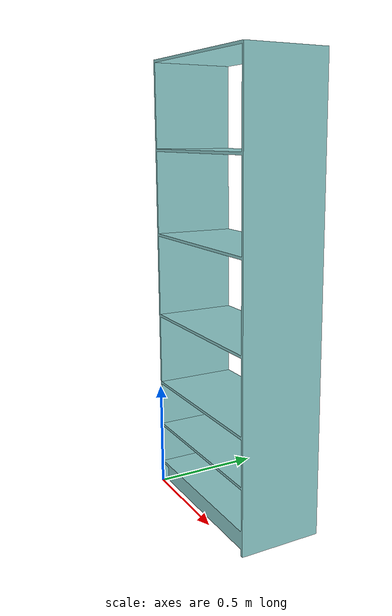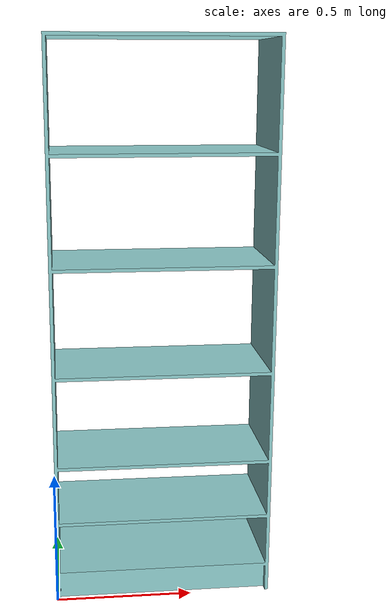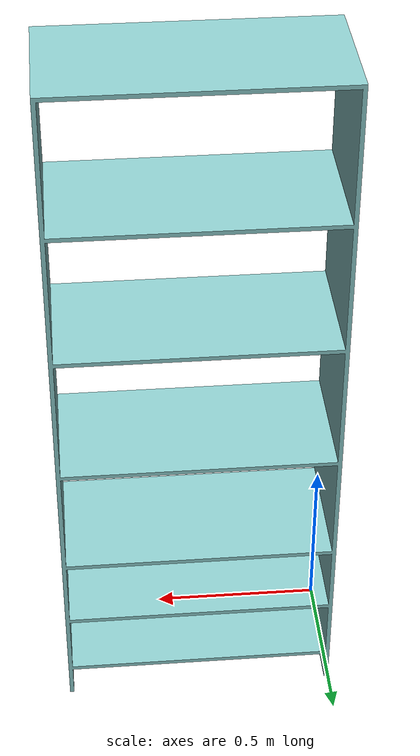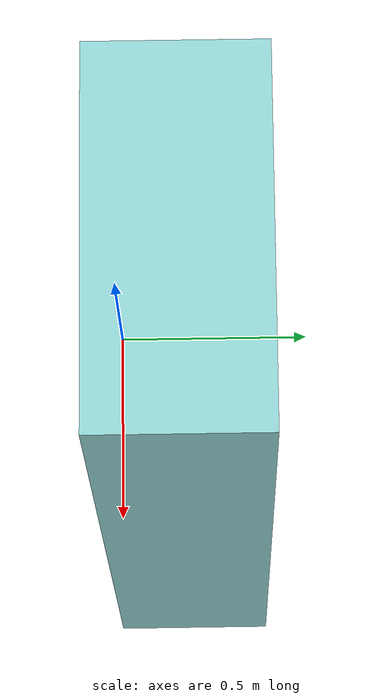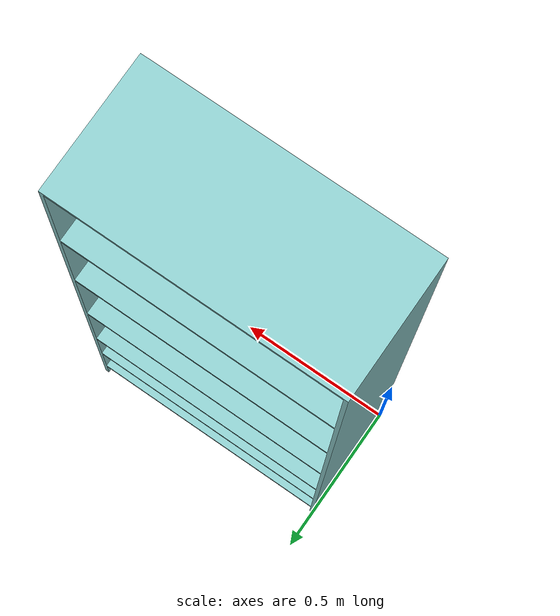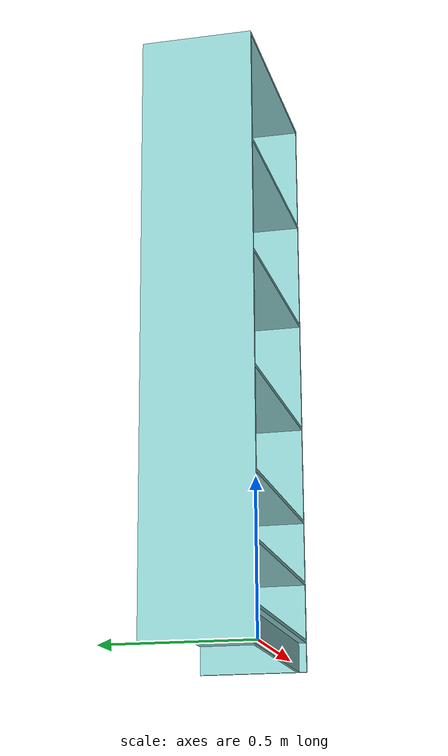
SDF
<?xml version="1.0" ?>
<sdf version='1.6'>
  <model name='Shelf_2_FR'>
    <link name='Shelf_2_FR'>
      <pose frame=''>0 0 0 0 -0 0</pose>
      <inertial>
        <pose frame=''>0.399 0.18522 0.96951 0 -0 0</pose>
        <mass>43.612</mass>
        <inertia>
          <ixx>18.296</ixx>
          <ixy>1.6757e-15</ixy>
          <ixz>-1.9427e-14</ixz>
          <iyy>21.874</iyy>
          <iyz>0.11138</iyz>
          <izz>4.6243</izz>
        </inertia>
      </inertial>
      <collision name='Shelf_2_FR_collision'>
        <pose frame=''>0 0 0 1.5708 -0 0</pose>
        <geometry>
          <mesh>
            <scale>1 1 1</scale>
            <uri>model://Shelf_2_FR/meshes/Shelf_2_FR.dae</uri>
          </mesh>
        </geometry>
      </collision>
      <visual name='Shelf_2_FR_visual'>
        <pose frame=''>0 0 0 1.5708 -0 0</pose>
        <geometry>
          <mesh>
            <scale>1 1 1</scale>
            <uri>model://Shelf_2_FR/meshes/Shelf_2_FR.dae</uri>
          </mesh>
        </geometry>
      </visual>
    </link>
  </model>
</sdf>
